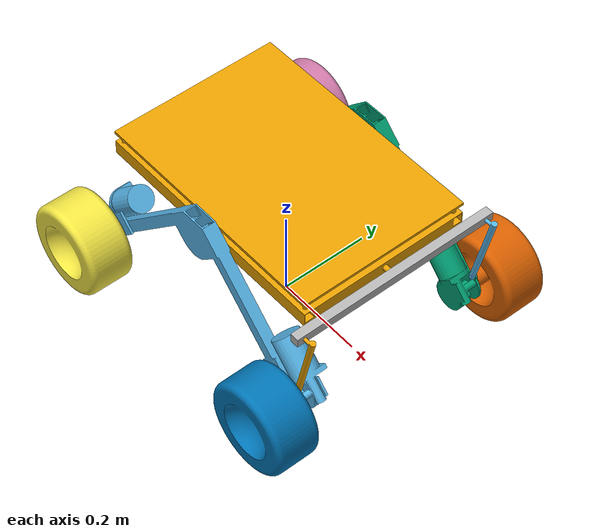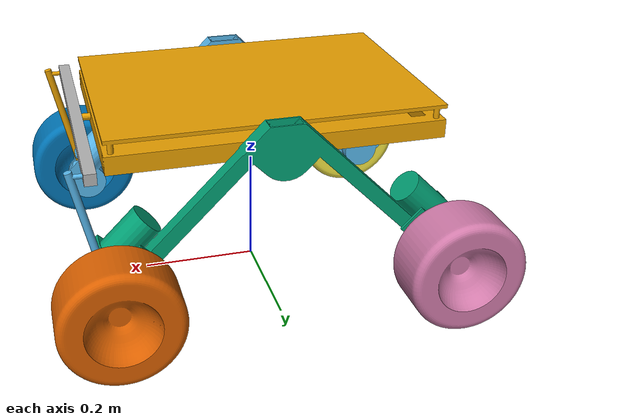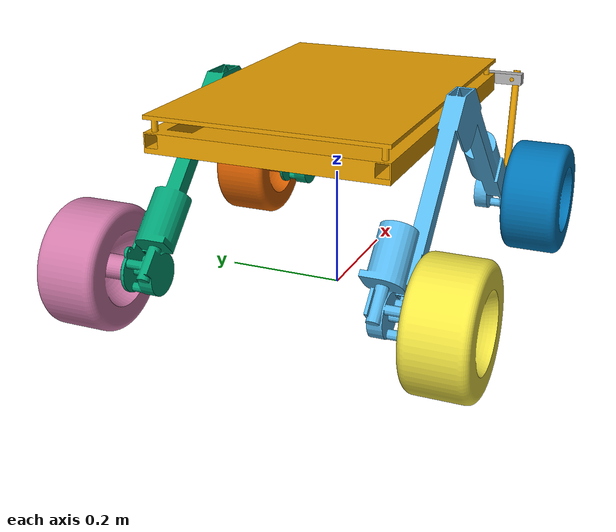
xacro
<?xml version="1.0" ?>
<robot name="rover" xmlns:xacro="http://www.ros.org/wiki/xacro">

<xacro:include filename="$(find rover_description)/description/links.xacro" />
<xacro:include filename="$(find rover_description)/description/joints.xacro" />
<xacro:include filename="$(find rover_description)/description/transmissions.xacro" />
<xacro:include filename="$(find rover_description)/description/gazebo.xacro" />

</robot>

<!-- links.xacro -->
<robot name="rover" xmlns:xacro="http://www.ros.org/wiki/xacro">

<link name="base_link">
  <inertial>
    <origin xyz="0.00015786853655922194 -2.501616775090207e-11 0.3198890536270612" rpy="0 0 0"/>
    <mass value="24.252446500368254"/>
    <inertia ixx="0.343153" iyy="0.69552" izz="1.009039" ixy="-0.0" iyz="-0.0" ixz="3.4e-05"/>
  </inertial>

  <visual>
    <origin xyz="0 0 0" rpy="0 0 0"/>
    <geometry>
      <mesh filename="package://rover_description/meshes/base_link.stl" scale="0.001 0.001 0.001"/>
    </geometry>
  </visual>

  <collision>
    <origin xyz="0 0 0" rpy="0 0 0"/>
    <geometry>
      <mesh filename="package://rover_description/meshes/base_link.stl" scale="0.001 0.001 0.001"/>
    </geometry>
  </collision>
</link>

<link name="wheel_link_right">
  <inertial>
    <origin xyz="0.0043643993036362886 -0.0003573906281803263 -0.13933065621645918" rpy="0 0 0"/>
    <mass value="7.695397563761951"/>
    <inertia ixx="0.031684" iyy="0.4866" izz="0.459707" ixy="-0.000248" iyz="0.001358" ixz="-0.000311"/>
  </inertial>

  <visual>
    <origin xyz="0.0 0.192 -0.307734" rpy="0 0 0"/>
    <geometry>
      <mesh filename="package://rover_description/meshes/wheel_link_right.stl" scale="0.001 0.001 0.001"/>
    </geometry>
  </visual>

  <collision>
    <origin xyz="0.0 0.192 -0.307734" rpy="0 0 0"/>
    <geometry>
      <mesh filename="package://rover_description/meshes/wheel_link_right.stl" scale="0.001 0.001 0.001"/>
    </geometry>
  </collision>
</link>

<link name="wheel_link_left">
  <inertial>
    <origin xyz="-0.004364297678518451 0.0003574250436318427 -0.1393305211820717" rpy="0 0 0"/>
    <mass value="7.695377181144577"/>
    <inertia ixx="0.031684" iyy="0.486598" izz="0.459705" ixy="-0.000248" iyz="-0.001358" ixz="0.000311"/>
  </inertial>

  <visual>
    <origin xyz="-0.0 -0.192 -0.307734" rpy="0 0 0"/>
    <geometry>
      <mesh filename="package://rover_description/meshes/wheel_link_left.stl" scale="0.001 0.001 0.001"/>
    </geometry>
  </visual>

  <collision>
    <origin xyz="-0.0 -0.192 -0.307734" rpy="0 0 0"/>
    <geometry>
      <mesh filename="package://rover_description/meshes/wheel_link_left.stl" scale="0.001 0.001 0.001"/>
    </geometry>
  </collision>
</link>

<link name="wheel_rear_right">
  <inertial>
    <origin xyz="-1.0056706983840868e-07 -0.04993895422902905 8.20175889426622e-08" rpy="0 0 0"/>
    <mass value="1.4854511848824994"/>
    <inertia ixx="0.005903" iyy="0.009082" izz="0.005903" ixy="0.0" iyz="-0.0" ixz="0.0"/>
  </inertial>

  <visual>
    <origin xyz="0.28198 0.235 -0.1" rpy="0 0 0"/>
    <geometry>
      <mesh filename="package://rover_description/meshes/wheel_rear_right.stl" scale="0.001 0.001 0.001"/>
    </geometry>
  </visual>

  <collision>
    <origin xyz="0.28198 0.235 -0.1" rpy="0 0 0"/>
    <geometry>
      <mesh filename="package://rover_description/meshes/wheel_rear_right.stl" scale="0.001 0.001 0.001"/>
    </geometry>
  </collision>
</link>

<link name="wheel_front_right">
  <inertial>
    <origin xyz="1.032402093259499e-07 -0.049938954229037436 8.201759083004134e-08" rpy="0 0 0"/>
    <mass value="1.4854511848824936"/>
    <inertia ixx="0.005903" iyy="0.009082" izz="0.005903" ixy="0.0" iyz="-0.0" ixz="0.0"/>
  </inertial>

  <visual>
    <origin xyz="-0.28198 0.235 -0.1" rpy="0 0 0"/>
    <geometry>
      <mesh filename="package://rover_description/meshes/wheel_front_right.stl" scale="0.001 0.001 0.001"/>
    </geometry>
  </visual>

  <collision>
    <origin xyz="-0.28198 0.235 -0.1" rpy="0 0 0"/>
    <geometry>
      <mesh filename="package://rover_description/meshes/wheel_front_right.stl" scale="0.001 0.001 0.001"/>
    </geometry>
  </collision>
</link>

<link name="wheel_front_left">
  <inertial>
    <origin xyz="9.809747802957958e-08 0.049938954428228266 3.00908895994878e-08" rpy="0 0 0"/>
    <mass value="1.485455971405251"/>
    <inertia ixx="0.005903" iyy="0.009082" izz="0.005903" ixy="-0.0" iyz="-0.0" ixz="0.0"/>
  </inertial>

  <visual>
    <origin xyz="-0.28198 -0.235 -0.1" rpy="0 0 0"/>
    <geometry>
      <mesh filename="package://rover_description/meshes/wheel_front_left.stl" scale="0.001 0.001 0.001"/>
    </geometry>
  </visual>

  <collision>
    <origin xyz="-0.28198 -0.235 -0.1" rpy="0 0 0"/>
    <geometry>
      <mesh filename="package://rover_description/meshes/wheel_front_left.stl" scale="0.001 0.001 0.001"/>
    </geometry>
  </collision>
</link>

<link name="wheel_rear_left">
  <inertial>
    <origin xyz="-1.0570980280011355e-07 0.049938954428236815 3.009089151462252e-08" rpy="0 0 0"/>
    <mass value="1.4854559714052498"/>
    <inertia ixx="0.005903" iyy="0.009082" izz="0.005903" ixy="-0.0" iyz="-0.0" ixz="0.0"/>
  </inertial>

  <visual>
    <origin xyz="0.28198 -0.235 -0.1" rpy="0 0 0"/>
    <geometry>
      <mesh filename="package://rover_description/meshes/wheel_rear_left.stl" scale="0.001 0.001 0.001"/>
    </geometry>
  </visual>

  <collision>
    <origin xyz="0.28198 -0.235 -0.1" rpy="0 0 0"/>
    <geometry>
      <mesh filename="package://rover_description/meshes/wheel_rear_left.stl" scale="0.001 0.001 0.001"/>
    </geometry>
  </collision>
</link>

<link name="mid_balance_link">
  <inertial>
    <origin xyz="0.009750000000000147 -4.243624006654342e-15 -9.992007221626409e-16" rpy="0 0 0"/>
    <mass value="1.4059410622323745"/>
    <inertia ixx="0.025958" iyy="8.8e-05" izz="0.025959" ixy="0.0" iyz="0.0" ixz="0.0"/>
  </inertial>

  <visual>
    <origin xyz="-0.295 0.0 -0.310934" rpy="0 0 0"/>
    <geometry>
      <mesh filename="package://rover_description/meshes/mid_balance_link.stl" scale="0.001 0.001 0.001"/>
    </geometry>
  </visual>

  <collision>
    <origin xyz="-0.295 0.0 -0.310934" rpy="0 0 0"/>
    <geometry>
      <mesh filename="package://rover_description/meshes/mid_balance_link.stl" scale="0.001 0.001 0.001"/>
    </geometry>
  </collision>
</link>

<link name="right_balance_link">
  <inertial>
    <origin xyz="0.02062914851910752 0.00010564044648722626 -0.07732214415581778" rpy="0 0 0"/>
    <mass value="0.1986031847835859"/>
    <inertia ixx="0.000589" iyy="0.000615" izz="3e-05" ixy="0.0" iyz="2e-06" ixz="-0.000109"/>
  </inertial>

  <visual>
    <origin xyz="-0.295 0.220009 -0.310934" rpy="0 0 0"/>
    <geometry>
      <mesh filename="package://rover_description/meshes/right_balance_link.stl" scale="0.001 0.001 0.001"/>
    </geometry>
  </visual>

  <collision>
    <origin xyz="-0.295 0.220009 -0.310934" rpy="0 0 0"/>
    <geometry>
      <mesh filename="package://rover_description/meshes/right_balance_link.stl" scale="0.001 0.001 0.001"/>
    </geometry>
  </collision>
</link>

<link name="left_balance_link">
  <inertial>
    <origin xyz="0.02062904918787567 -0.00010573799925786553 -0.07732286028099009" rpy="0 0 0"/>
    <mass value="0.1986022250723333"/>
    <inertia ixx="0.000589" iyy="0.000615" izz="3e-05" ixy="-0.0" iyz="-2e-06" ixz="-0.000109"/>
  </inertial>

  <visual>
    <origin xyz="-0.295 -0.220009 -0.310934" rpy="0 0 0"/>
    <geometry>
      <mesh filename="package://rover_description/meshes/left_balance_link.stl" scale="0.001 0.001 0.001"/>
    </geometry>
  </visual>

  <collision>
    <origin xyz="-0.295 -0.220009 -0.310934" rpy="0 0 0"/>
    <geometry>
      <mesh filename="package://rover_description/meshes/left_balance_link.stl" scale="0.001 0.001 0.001"/>
    </geometry>
  </collision>
</link>

</robot>

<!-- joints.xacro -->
<robot name="rover" xmlns:xacro="http://www.ros.org/wiki/xacro">

<joint name="right_wheel_link_to_base_link_joint" type="continuous">
  <origin xyz="0.0 -0.192 0.307734" rpy="0 0 0"/>
  <parent link="base_link"/>
  <child link="wheel_link_right"/>
  <axis xyz="-0.0 -1.0 0.0"/>
</joint>

<joint name="left_wheel_link_to_base_link_joint" type="continuous">
  <origin xyz="0.0 0.192 0.307734" rpy="0 0 0"/>
  <parent link="base_link"/>
  <child link="wheel_link_left"/>
  <axis xyz="0.0 1.0 0.0"/>
</joint>

<joint name="rear_right_wheel_to_wheel_link_joint" type="continuous">
  <origin xyz="-0.28198 -0.043 -0.207734" rpy="0 0 0"/>
  <parent link="wheel_link_right"/>
  <child link="wheel_rear_right"/>
  <axis xyz="-0.0 -1.0 -0.0"/>
</joint>

<joint name="front_right_wheel_to_wheel_link_joint" type="continuous">
  <origin xyz="0.28198 -0.043 -0.207734" rpy="0 0 0"/>
  <parent link="wheel_link_right"/>
  <child link="wheel_front_right"/>
  <axis xyz="-0.0 -1.0 -0.0"/>
</joint>

<joint name="front_left_wheel_to_wheel_link_joint" type="continuous">
  <origin xyz="0.28198 0.043 -0.207734" rpy="0 0 0"/>
  <parent link="wheel_link_left"/>
  <child link="wheel_front_left"/>
  <axis xyz="0.0 1.0 -0.0"/>
</joint>

<joint name="rear_left_wheel_to_wheel_link_joint" type="continuous">
  <origin xyz="-0.28198 0.043 -0.207734" rpy="0 0 0"/>
  <parent link="wheel_link_left"/>
  <child link="wheel_rear_left"/>
  <axis xyz="0.0 1.0 -0.0"/>
</joint>

<joint name="mid_balance_link_to_base_link_joint" type="continuous">
  <origin xyz="0.295 0.0 0.310934" rpy="0 0 0"/>
  <parent link="base_link"/>
  <child link="mid_balance_link"/>
  <axis xyz="1.0 0.0 -0.0"/>
</joint>

<joint name="right_balance_link_to_mid_balance_link_joint" type="continuous">
  <origin xyz="0.0 -0.220009 0.0" rpy="0 0 0"/>
  <parent link="mid_balance_link"/>
  <child link="right_balance_link"/>
  <axis xyz="1.0 0.0 -0.0"/>
</joint>

<joint name="left_balance_link_to_mid_balance_link_joint" type="continuous">
  <origin xyz="0.0 0.220009 0.0" rpy="0 0 0"/>
  <parent link="mid_balance_link"/>
  <child link="left_balance_link"/>
  <axis xyz="1.0 0.0 -0.0"/>
</joint>

<gazebo>
  <joint name="right_balance_link_to_right_wheel_link_joint" type="continuous">
    <pose>0.0 0.0 0.0 0 0 0</pose>
    <parent>right_wheel_link</parent>
    <child>right_balance_link</child>
    <axis>
      <xyz>0.0 1.0 -0.0</xyz>
    </axis>
  </joint>
</gazebo>

<gazebo>
  <joint name="left_balance_link_to_left_wheel_link_joint" type="continuous">
    <pose>0.0 0.0 0.0 0 0 0</pose>
    <parent>left_wheel_link</parent>
    <child>left_balance_link</child>
    <axis>
      <xyz>0.0 1.0 -0.0</xyz>
    </axis>
  </joint>
</gazebo>

</robot>
